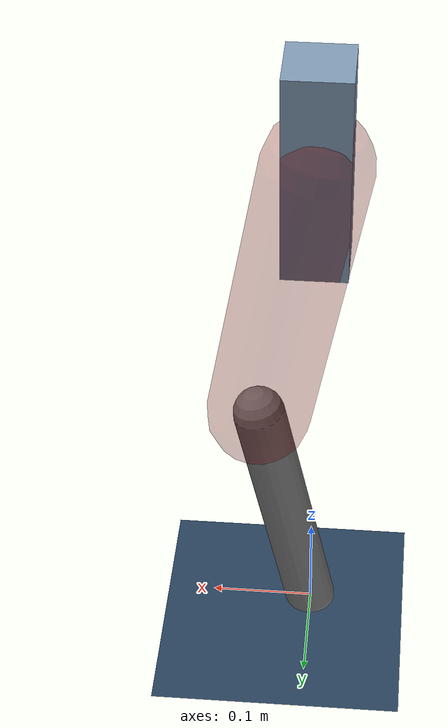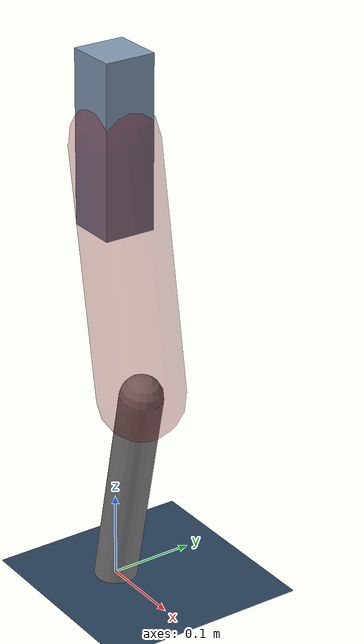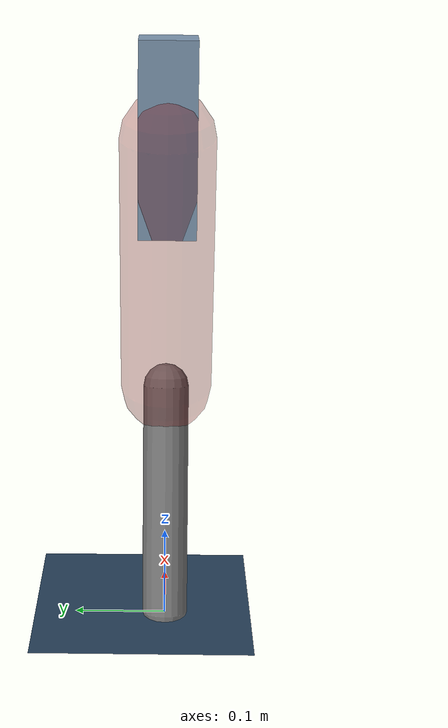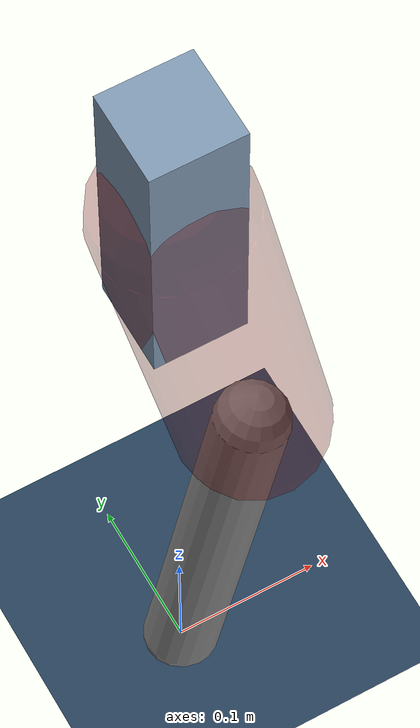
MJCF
<mujoco model="Hopper2D">
	<compiler inertiafromgeom="true" angle="radian" />
	<option timestep="0.001" integrator="implicit" cone="elliptic" solver="Newton" tolerance="1e-10" />

	<default>
		<geom contype="1" conaffinity="1" condim="3" friction="2 0.005 0.0001" solref="0.005 1" />
		<joint limited="true" damping="0.1" />
	</default>

	<asset>
		<texture name="skybox" type="skybox" builtin="gradient" rgb1=".4 .6 .8" rgb2="0 0 0" width="800" height="800" />
		<texture name="grid" type="2d" builtin="checker" rgb1=".1 .2 .3" rgb2=".2 .3 .4" width="300" height="300" mark="edge" markrgb=".2 .3 .4" />
		<material name="ground" texture="grid" texrepeat="1 1" texuniform="true" reflectance="0.1" />
		<material name="leg" rgba="0.5 0.6 0.7 1" />
	</asset>

	<worldbody>

		<geom name="floor" type="plane" size="5 5 0.25" material="ground" />

		<light directional="false" diffuse="0.8 0.8 0.8" specular="0.3 0.3 0.3" pos="0 0 2" dir="0 0 -1" />
		<light mode="targetbodycom" target="base" directional="false" diffuse="0.8 0.8 0.8" specular="0.3 0.3 0.3" pos="0 0 2" dir="0 0 -1" />

		<camera name="fixed" pos="0 -2 1" xyaxes="1 0 0 0 0 1" />
		<camera name="tracking" mode="trackcom" pos="0 -3 1" />

		<body name="root" pos="0 0 0.5359698985281522">
			<joint name="slide_x" type="slide" axis="1 0 0" range="-100 100" />
			<joint name="slide_z" type="slide" axis="0 0 1" range="0 10" />

			<body name="base" pos="0 0 0">
				<geom name="torso" type="box" size="0.03 0.03 0.1" mass="1.806" material="leg" />

				<body name="link1" pos="0 0 0" euler="0 1.3899430144211706 0">
					<joint type="hinge" axis="0 -1 0" pos="0 0 0" name="hinge1" limited="true" range="-3.14 3.14" stiffness="0" damping="0.1" />
					<geom name="thigh" type="capsule" fromto="0 0 0 0.28865020555211934 0 0" size="0.05" rgba="0.5 0 0 0.3" mass="0.9581905344355103" />

					<body name="link2" pos="0.28865020555211934 0 0" euler="0 0.3840174281044569 0">
						<joint type="hinge" axis="0 -1 0" pos="0 0 0" name="hinge2" limited="true" range="-3.14 3.14" stiffness="0" damping="0.1" />
						<geom name="shank" type="capsule" fromto="0 0 0 0.2573196929760329 0 0" size="0.025" mass="0.4485557543808263" />

					</body>
				</body>
			</body>
		</body>
	</worldbody>

	<actuator>
		<motor name="torque1" joint="hinge1" ctrlrange="-60.66548442223658 60.66548442223658" ctrllimited="true" gear="1" />
		<motor name="torque2" joint="hinge2" ctrlrange="-65.993442535142 65.993442535142" ctrllimited="true" gear="1" />
	</actuator>
</mujoco>
